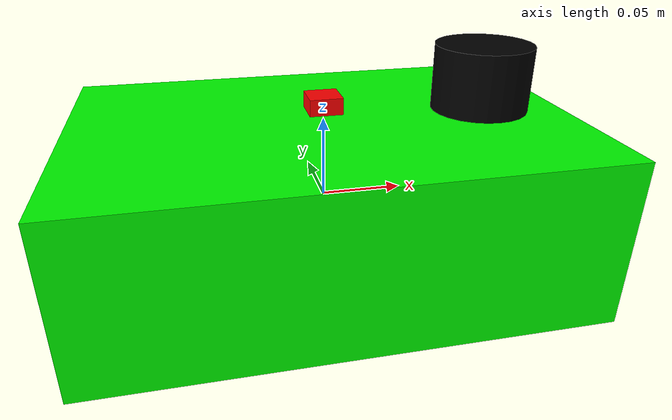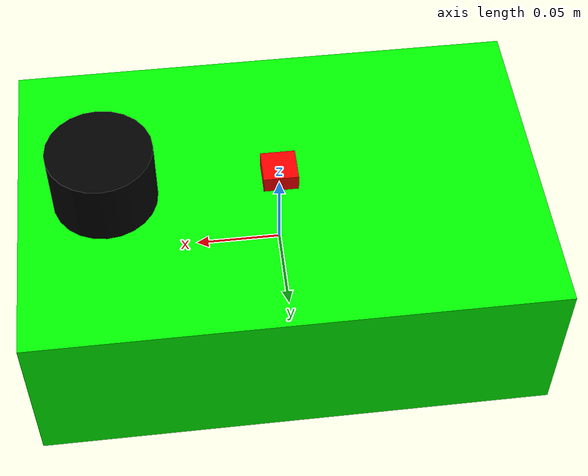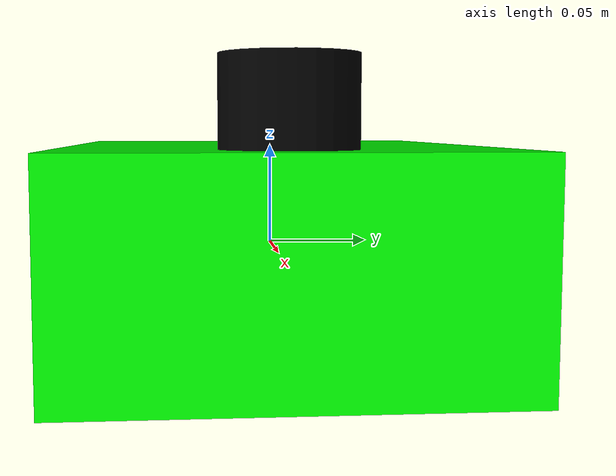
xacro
<?xml version="1.0"?>
<robot name="turtlebot3_box_2" xmlns:xacro="http://ros.org/wiki/xacro">

  <xacro:arg name="laser_visual" default="false"/>
  <xacro:arg name="imu_visual" default="false"/>

  <!-- Base Link -->
  <link name="base_link">
    <visual>
      <origin xyz="0 0 0" rpy="0 0 0"/>
      <geometry>
        <box size="0.3 0.2 0.1"/>
      </geometry>
      <material name="green">
        <color rgba="0.0 1.0 0.0 1.0"/>
      </material>
    </visual>

    <collision>
      <origin xyz="0 0 0" rpy="0 0 0"/>
      <geometry>
        <box size="0.3 0.2 0.1"/>
      </geometry>
    </collision>

    <inertial>
      <origin xyz="0 0 0" rpy="0 0 0"/>
      <mass value="1.0"/>
      <inertia ixx="0.0083" ixy="0.0" ixz="0.0" iyy="0.0208" iyz="0.0" izz="0.025"/>
    </inertial>
  </link>

  <!-- Laser Link -->
  <link name="base_scan">
    <visual>
      <origin xyz="0 0 0" rpy="0 0 0"/>
      <geometry>
        <cylinder radius="0.03" length="0.04"/>
      </geometry>
      <material name="black">
        <color rgba="0.0 0.0 0.0 1.0"/>
      </material>
    </visual>

    <collision>
      <origin xyz="0 0 0" rpy="0 0 0"/>
      <geometry>
        <cylinder radius="0.03" length="0.04"/>
      </geometry>
    </collision>

    <inertial>
      <origin xyz="0 0 0" rpy="0 0 0"/>
      <mass value="0.125"/>
      <inertia ixx="0.001" ixy="0.0" ixz="0.0" iyy="0.001" iyz="0.0" izz="0.001"/>
    </inertial>
  </link>

  <!-- IMU Link -->
  <link name="imu_link">
    <visual>
      <origin xyz="0 0 0" rpy="0 0 0"/>
      <geometry>
        <box size="0.02 0.02 0.01"/>
      </geometry>
      <material name="red">
        <color rgba="1.0 0.0 0.0 1.0"/>
      </material>
    </visual>

    <collision>
      <origin xyz="0 0 0" rpy="0 0 0"/>
      <geometry>
        <box size="0.02 0.02 0.01"/>
      </geometry>
    </collision>

    <inertial>
      <origin xyz="0 0 0" rpy="0 0 0"/>
      <mass value="0.01"/>
      <inertia ixx="0.00001" ixy="0.0" ixz="0.0" iyy="0.00001" iyz="0.0" izz="0.00001"/>
    </inertial>
  </link>

  <!-- Joints -->
  <joint name="base_laser_joint" type="fixed">
    <parent link="base_link"/>
    <child link="base_scan"/>
    <origin xyz="0.1 0 0.07" rpy="0 0 0"/>
  </joint>

  <joint name="base_imu_joint" type="fixed">
    <parent link="base_link"/>
    <child link="imu_link"/>
    <origin xyz="0 0 0.06" rpy="0 0 0"/>
  </joint>

  <!-- Gazebo Properties -->
  <gazebo reference="base_link">
    <material>Gazebo/Green</material>
  </gazebo>

  <gazebo reference="base_scan">
    <material>Gazebo/FlatBlack</material>
  </gazebo>

  <gazebo reference="imu_link">
    <material>Gazebo/Red</material>
  </gazebo>

  <!-- Gazebo Direct Control Plugin for robot2 namespace -->
  <gazebo>
    <plugin name="planar_move" filename="libgazebo_ros_planar_move.so">
      <commandTopic>cmd_vel</commandTopic>
      <odometryTopic>odom</odometryTopic>
      <odometryFrame>robot2/odom</odometryFrame>
      <robotBaseFrame>robot2/base_link</robotBaseFrame>
      <odometryRate>30.0</odometryRate>
      <publishTf>true</publishTf>
    </plugin>
  </gazebo>

  <!-- P3D Plugin for Ground Truth Pose -->
  <gazebo>
    <plugin name="p3d_base_controller" filename="libgazebo_ros_p3d.so">
      <alwaysOn>true</alwaysOn>
      <updateRate>30.0</updateRate>
      <bodyName>base_link</bodyName>
      <topicName>base_pose_ground_truth</topicName>
      <gaussianNoise>0.0</gaussianNoise>
      <frameName>map</frameName>
      <xyzOffsets>0 0 0</xyzOffsets>
      <rpyOffsets>0 0 0</rpyOffsets>
      <publishTf>false</publishTf>
    </plugin>
  </gazebo>

  <!-- IMU Plugin -->
  <gazebo>
    <plugin name="imu_plugin" filename="libgazebo_ros_imu.so">
      <alwaysOn>true</alwaysOn>
      <bodyName>imu_link</bodyName>
      <frameName>robot2/imu_link</frameName>
      <topicName>imu</topicName>
      <serviceName>imu_service</serviceName>
      <gaussianNoise>0.0</gaussianNoise>
      <updateRate>30</updateRate>
      <imu>
        <noise>
          <type>gaussian</type>
          <rate>
            <mean>0.0</mean>
            <stddev>2e-4</stddev>
            <bias_mean>0.0000075</bias_mean>
            <bias_stddev>0.0000008</bias_stddev>
          </rate>
          <accel>
            <mean>0.0</mean>
            <stddev>1.7e-2</stddev>
            <bias_mean>0.1</bias_mean>
            <bias_stddev>0.001</bias_stddev>
          </accel>
        </noise>
      </imu>
    </plugin>
  </gazebo>

  <!-- Laser Scanner Plugin -->
  <gazebo reference="base_scan">
    <sensor type="ray" name="lds_lfcd_sensor">
      <pose>0 0 0 0 0 0</pose>
      <visualize>$(arg laser_visual)</visualize>
      <update_rate>5</update_rate>
      <ray>
        <scan>
          <horizontal>
            <samples>360</samples>
            <resolution>1</resolution>
            <min_angle>0.0</min_angle>
            <max_angle>6.28319</max_angle>
          </horizontal>
        </scan>
        <range>
          <min>0.120</min>
          <max>3.5</max>
          <resolution>0.015</resolution>
        </range>
        <noise>
          <type>gaussian</type>
          <mean>0.0</mean>
          <stddev>0.01</stddev>
        </noise>
      </ray>
      <plugin name="gazebo_ros_lds_lfcd_controller" filename="libgazebo_ros_laser.so">
        <topicName>scan</topicName>
        <frameName>robot2/base_scan</frameName>
      </plugin>
    </sensor>
  </gazebo>

</robot>
